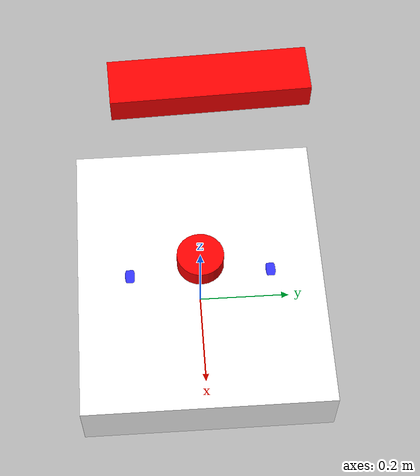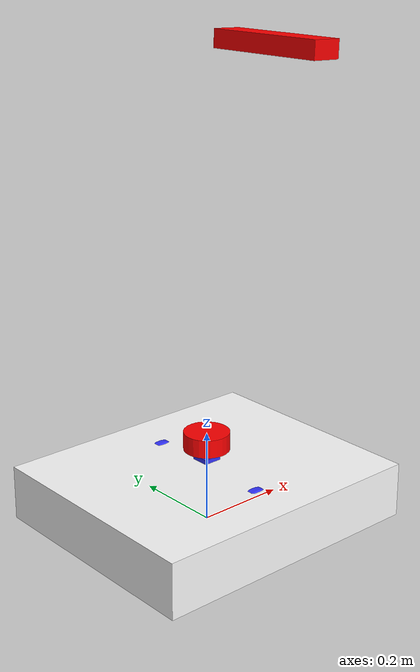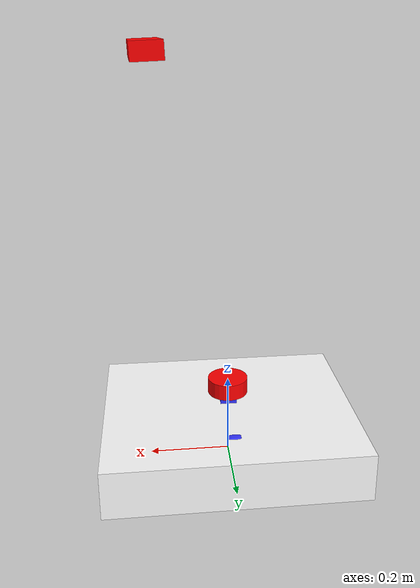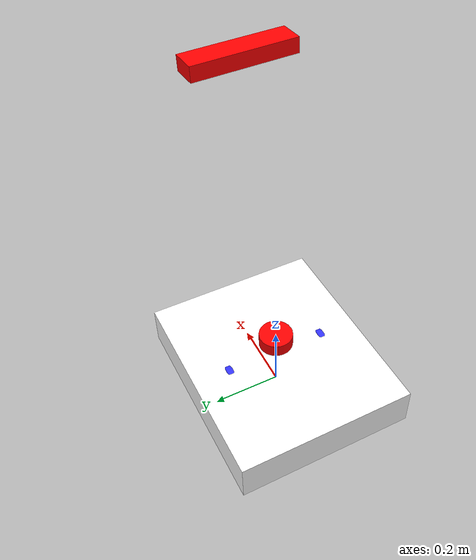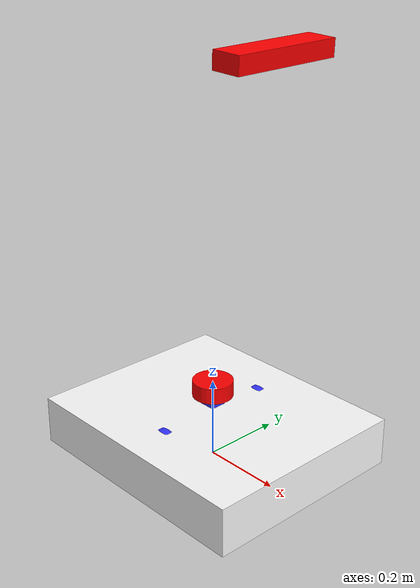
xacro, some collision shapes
<?xml version="1.0"?>
<robot xmlns:xacro="http://www.ros.org/wiki/xacro" name="nevo">

    <!-- sim_mode = true  -> Gazebo hardware (gz_ros2_control)
         sim_mode = false -> real hardware (nevo_diffdrive_arduino). Default = real robot. -->
    <xacro:arg name="sim_mode" default="false"/>

    <!-- Robot namespace (e.g. nevo1). Only used in sim: gz sensor topic prefix and the
         namespace of the controller_manager inside Gazebo. Empty = no namespace. -->
    <xacro:arg name="namespace" default=""/>

    <!-- Sim depth camera (Kinect) on/off -->
    <xacro:arg name="camera" default="false"/>

    <xacro:include filename="robot_core.xacro"/>

    <!-- Hardware: one ros2_control block, plugin chosen by sim_mode -->
    <xacro:include filename="ros2_control.xacro"/>

    <xacro:include filename="lidar.xacro"/>
    <xacro:include filename="depth_camera.xacro"/>
    <xacro:include filename="imu.xacro"/>

</robot>

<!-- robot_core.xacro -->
<robot xmlns:xacro="http://www.ros.org/wiki/xacro" >

    <xacro:include filename="inertial_macros.xacro"/>

    <xacro:property name="mesh_scale" value="0.001 0.001 0.001"/>

    <material name="white">
        <color rgba="1 1 1 1"/>
    </material>
    <material name="orange">
        <color rgba="1 0.3 0.1 1"/>
    </material>
    <material name="blue">
        <color rgba="0.2 0.2 1 1"/>
    </material>
    <material name="black">
        <color rgba="0 0 0 1"/>
    </material>
    <material name="red">
        <color rgba="1 0 0 1"/>
    </material>

    <link name="base_link">
    </link>

    <joint name="base_footprint_joint" type="fixed">
        <parent link="base_link"/>
        <child link="base_footprint"/>
        <origin xyz="0 0 0" rpy="0 0 0"/>
    </joint>

    <link name="base_footprint">
    </link>

    <joint name="chassis_joint" type="fixed">
        <parent link="base_link"/>
        <child link="chassis"/>
        <origin xyz="-0.315 0.0 0.0"/>
    </joint>

    <link name="chassis">
        <visual>
            <origin xyz="0.315 0.0 0.065" rpy="0.0 0.0 1.57"/>
            <geometry>
                <mesh filename="package://nevo_bringup/meshes/body_urdf.stl" scale="${mesh_scale}"/>
            </geometry>
            <material name="white"/>
        </visual>
        <collision>
            <origin xyz="0.315 0.0 0.065" rpy="0.0 0.0 0.0"/>
            <geometry>
                <box size="0.63 0.53 0.12"/>
            </geometry>
        </collision>
        <xacro:inertial_box mass="5.0" x="0.63" y="0.53" z="0.12">
            <origin xyz="0.315 0.0 0.065" rpy="0.0 0.0 0.0"/>
        </xacro:inertial_box>
    </link>
    <gazebo reference="chassis">
        <visual>
            <material>
                <ambient>1 1 1 1</ambient>
                <diffuse>1 1 1 1</diffuse>
                <specular>0.5 0.5 0.5 1</specular>
            </material>
        </visual>
    </gazebo>

    <joint name="left_wheel_joint" type="continuous">
        <parent link="base_link"/>
        <child link="left_wheel"/>
        <origin xyz="0.0 0.2125 0.0635" rpy="-${pi/2} 0 0"/>  <!-- wheel_separation 0.425 m (measured 42 cm), same as diff_cont -->
        <axis xyz="0.0 0.0 1.0"/>
    </joint>

    <link name="left_wheel">
        <visual>
            <origin xyz="0 0 0.14" rpy="0 1.57 0"/>
            <geometry>
                <mesh filename="package://nevo_bringup/meshes/left_wheel_urdf.stl" scale="${mesh_scale}"/>
            </geometry>
            <material name="blue"/>
        </visual>
        <collision>
            <origin xyz="0 0 0" rpy="0 0 0"/>
            <geometry>
                <cylinder radius="0.0635" length="0.024"/>
            </geometry>
        </collision>
        <xacro:inertial_cylinder mass="0.5" length="0.024" radius="0.0635">
            <origin xyz="0 0 0" rpy="0 0 0"/>
        </xacro:inertial_cylinder>
    </link>
    <gazebo reference="left_wheel">
        <visual>
            <material>
                <ambient>0.2 0.2 1 1</ambient>
                <diffuse>0.2 0.2 1 1</diffuse>
                <specular>0.5 0.5 0.5 1</specular>
            </material>
        </visual>
        <mu1>200.0</mu1>
        <mu2>200.0</mu2>
        <kp>10000000.0</kp>
        <kd>1.0</kd>
        <minDepth>0.001</minDepth>
        <maxVel>1.0</maxVel>
        <fdir1>1 0 0</fdir1>
    </gazebo>

    <joint name="right_wheel_joint" type="continuous">
        <parent link="base_link"/>
        <child link="right_wheel"/>
        <origin xyz="0.0 -0.2125 0.0635" rpy="${pi/2} 0 0"/>
        <axis xyz="0.0 0.0 -1.0"/>
    </joint>

    <link name="right_wheel">
        <visual>
            <origin xyz="0 0 -0.26" rpy="0 1.57 0"/>
            <geometry>
                <mesh filename="package://nevo_bringup/meshes/right_wheel_urdf.stl" scale="${mesh_scale}"/>
            </geometry>
            <material name="blue"/>
        </visual>
        <collision>
            <origin xyz="0 0 0" rpy="0 0 0"/>
            <geometry>
                <cylinder radius="0.0635" length="0.024"/>
            </geometry>
        </collision>
        <xacro:inertial_cylinder mass="0.5" length="0.024" radius="0.0635">
            <origin xyz="0 0 0" rpy="0 0 0"/>
        </xacro:inertial_cylinder>
    </link>
    <gazebo reference="right_wheel">
        <visual>
            <material>
                <ambient>0.2 0.2 1 1</ambient>
                <diffuse>0.2 0.2 1 1</diffuse>
                <specular>0.5 0.5 0.5 1</specular>
            </material>
        </visual>
        <mu1>200.0</mu1>
        <mu2>200.0</mu2>
        <kp>10000000.0</kp>
        <kd>1.0</kd>
        <minDepth>0.001</minDepth>
        <maxVel>1.0</maxVel>
        <fdir1>1 0 0</fdir1>
    </gazebo>

    <joint name="rear_caster_wheel_joint" type="fixed">
        <parent link="chassis"/>
        <child link="rear_caster_wheel"/>
        <origin xyz="0.56 0.0 0.05"/>
    </joint>

    <link name="rear_caster_wheel">
        <visual>
            <origin xyz="0 0 -0.03" rpy="0 0 0"/>
            <geometry>
                <sphere radius="0.02"/>
            </geometry>
            <material name="black"/>
        </visual>
        <collision>
            <origin xyz="0 0 -0.03" rpy="0 0 0"/>
            <geometry>
                <sphere radius="0.02"/>
            </geometry>
        </collision>
        <xacro:inertial_sphere mass="0.1" radius="0.02">
            <origin xyz="0.0 0.0 -0.03" rpy="0.0 0.0 0.0"/>
        </xacro:inertial_sphere>
    </link>
    <gazebo reference="rear_caster_wheel">
        <visual>
            <material>
                <ambient>0.1 0.1 0.1 1</ambient>
                <diffuse>0.1 0.1 0.1 1</diffuse>
                <specular>0.2 0.2 0.2 1</specular>
            </material>
        </visual>
        <mu1>0.0</mu1>
        <mu2>0.0</mu2>
        <kp>1000000.0</kp>
        <kd>100.0</kd>
        <minDepth>0.001</minDepth>
        <maxVel>0.1</maxVel>
    </gazebo>

    <joint name="back_caster_wheel_joint" type="fixed">
        <parent link="chassis"/>
        <child link="back_caster_wheel"/>
        <origin xyz="0.07 0.0 0.05"/>
    </joint>

    <link name="back_caster_wheel">
        <visual>
            <origin xyz="0 0 -0.03" rpy="0 0 0"/>
            <geometry>
                <sphere radius="0.02"/>
            </geometry>
            <material name="black"/>
        </visual>
        <collision>
            <origin xyz="0 0 -0.03" rpy="0 0 0"/>
            <geometry>
                <sphere radius="0.02"/>
            </geometry>
        </collision>
        <xacro:inertial_sphere mass="0.1" radius="0.02">
            <origin xyz="0.0 0.0 -0.03" rpy="0.0 0.0 0.0"/>
        </xacro:inertial_sphere>
    </link>
    <gazebo reference="back_caster_wheel">
        <visual>
            <material>
                <ambient>0.1 0.1 0.1 1</ambient>
                <diffuse>0.1 0.1 0.1 1</diffuse>
                <specular>0.2 0.2 0.2 1</specular>
            </material>
        </visual>
        <mu1>0.0</mu1>
        <mu2>0.0</mu2>
        <kp>1000000.0</kp>
        <kd>100.0</kd>
        <minDepth>0.001</minDepth>
        <maxVel>0.1</maxVel>
    </gazebo>

</robot>

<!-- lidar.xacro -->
<robot xmlns:xacro="http://www.ros.org/wiki/xacro" >

    <joint name="laser_joint" type="fixed">
        <parent link="chassis"/>
        <child link="laser_frame"/>
	<origin xyz="0.315 0 0.185" rpy="0 0 0"/>
    </joint>

    <link name="laser_frame">
        <visual>
            <geometry>
                <cylinder radius="0.05" length="0.04"/>
            </geometry>
            <material name="red"/>
        </visual>
        <collision>
            <geometry>
                <cylinder radius="0.05" length="0.04"/>
            </geometry>
        </collision>
        <xacro:inertial_cylinder mass="0.1" length="0.04" radius="0.05">
            <origin xyz="0 0 0" rpy="0 0 0"/>
        </xacro:inertial_cylinder>
    </link>

    <gazebo reference="laser_frame">
        <visual>
            <material>
                <ambient>0.1 0.1 0.1 1</ambient>
                <diffuse>0.1 0.1 0.1 1</diffuse>
                <specular>0.2 0.2 0.2 1</specular>
            </material>
        </visual>

        <sensor name="laser" type="gpu_lidar">
            <pose>0 0 0 0 0 0</pose>
            <visualize>false</visualize>
            <always_on>true</always_on>
            <update_rate>10</update_rate>
            <topic>$(arg namespace)/scan</topic>
            <gz_frame_id>laser_frame</gz_frame_id>
            <lidar>
                <scan>
                    <horizontal>
                        <samples>360</samples>
                        <resolution>1</resolution>
                        <min_angle>-3.14</min_angle>
                        <max_angle>3.14</max_angle>
                    </horizontal>
                </scan>
                <range>
                    <min>0.3</min>
                    <max>12</max>
                    <resolution>0.01</resolution>
                </range>
            </lidar>
        </sensor>
    </gazebo>

</robot>

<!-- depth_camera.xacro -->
<robot xmlns:xacro="http://www.ros.org/wiki/xacro" >

    <joint name="camera_joint" type="fixed">
        <parent link="chassis"/>
        <child link="camera_link"/>
        <origin xyz="0.495 0 1.0" rpy="0 0.0428 0.035"/>
    </joint>

    <link name="camera_link">
        <visual>
            <geometry>
                <box size="0.07 0.28 0.04"/>
            </geometry>
            <material name="red"/>
        </visual>
        <collision>
            <geometry>
                <box size="0.07 0.28 0.04"/>
            </geometry>
        </collision>
    </link>

    <joint name="camera_optical_joint" type="fixed">
        <parent link="camera_link"/>
        <child link="camera_link_optical"/>
        <origin xyz="0 0 0" rpy="${-pi/2} 0 ${-pi/2}"/>
    </joint>

    <link name="camera_link_optical"></link>

    <xacro:if value="$(arg camera)">
    <gazebo reference="camera_link">
        <visual>
            <material>
                <ambient>1 0 0 1</ambient>
                <diffuse>1 0 0 1</diffuse>
                <specular>0.5 0.5 0.5 1</specular>
            </material>
        </visual>

        <sensor name="camera" type="depth_camera">
            <pose>0 0 0 0 0 0</pose>
            <visualize>true</visualize>
            <always_on>true</always_on>
            <update_rate>5</update_rate>
            <topic>$(arg namespace)/camera/depth/image_raw</topic>
            <gz_frame_id>camera_link_optical</gz_frame_id>
            <camera>
                <horizontal_fov>1.089</horizontal_fov>
                <image>
                    <format>R8G8B8</format>
                    <width>640</width>
                    <height>480</height>
                </image>
                <clip>
                    <near>0.05</near>
                    <far>8.0</far>
                </clip>
            </camera>
        </sensor>
    </gazebo>
    </xacro:if>

</robot>

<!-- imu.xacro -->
<robot xmlns:xacro="http://www.ros.org/wiki/xacro" >

    <joint name="imu_joint" type="fixed">
        <parent link="chassis"/>
        <child link="imu_link"/>
        <origin xyz="0.315 0 0.145" rpy="0 0 0"/>
    </joint>

    <link name="imu_link">
        <visual>
            <geometry>
                <box size="0.04 0.04 0.01"/>
            </geometry>
            <material name="blue">
                <color rgba="0.2 0.2 1 1"/>
            </material>
        </visual>
        <collision>
            <geometry>
                <box size="0.04 0.04 0.01"/>
            </geometry>
        </collision>
    </link>

</robot>
